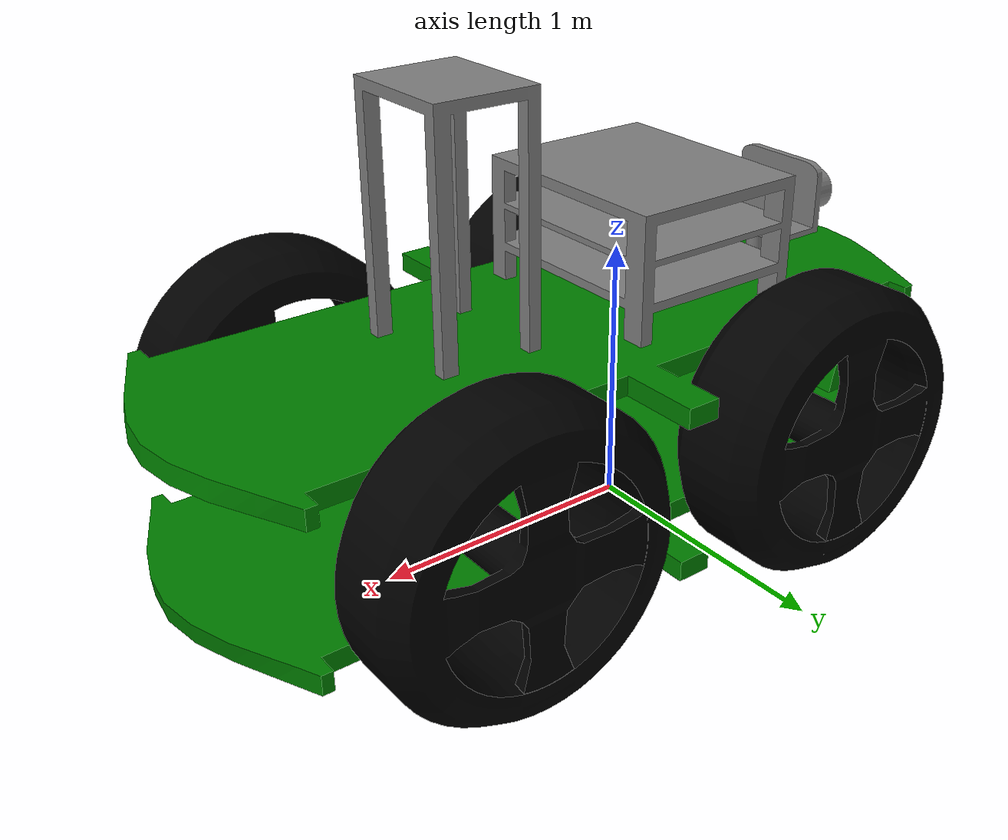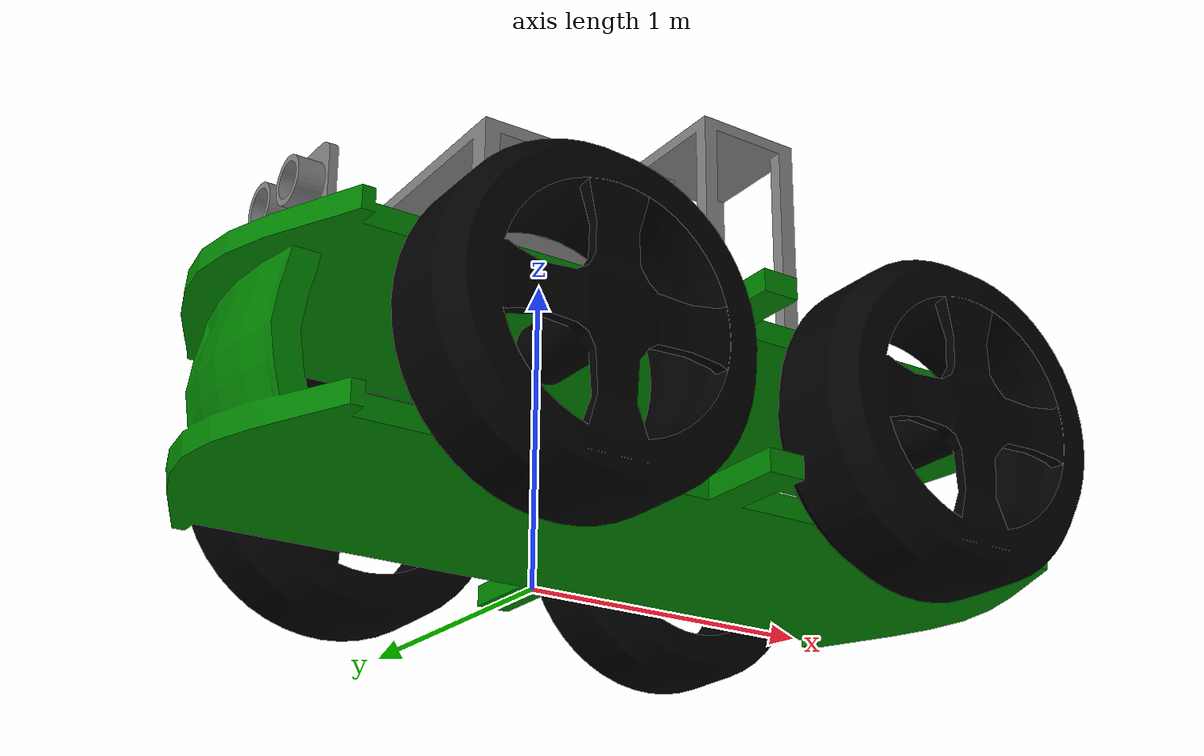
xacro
<?xml version="1.0"?>
<robot name="gojo_robot" xmlns:xacro="http://www.ros.org/wiki/xacro">

    <material name="green">
        <color rgba="0 0.5 0 1.0" />
    </material>
    <material name="grey">
        <color rgba="0.5 0.5 0.5 1" />
    </material>
    <material name="black">
        <color rgba="0 0 0 1" />
    </material>

    <link name="base_footprint">
    </link>
    <link name="base_link">
        <visual>
            <geometry>
                <mesh filename="package://gojo_description/meshes/chassis.stl" />
            </geometry>
            <origin xyz="0 0 0" rpy="0 0 0" />
            <material name="green" />
        </visual>
        <collision>
            <geometry>
                <box size="2.579053 1.183461 0.622474" />
            </geometry>
            <origin xyz="0 0 0" rpy="0 0 0" />
        </collision>
        <inertial>
            <mass value="1.0" />
            <origin xyz="0.246856 -0.000080 -0.000820" rpy="3.1416 -0.000377 3.1416" />
            <inertia ixx="0.251775" ixy="0.000000" ixz="0.0000000"
                     iyy="0.743608" iyz="0.000000"
                     izz="0.929233" />
        </inertial>
    </link>

    <joint name="base_joint" type="fixed">
        <parent link="base_footprint" />
        <child link="base_link" />
        <origin xyz="0 0 0.5" rpy="0 0 0" />
    </joint>

    <link name="left_front_wheel_link">
        <visual>
            <geometry>
                <mesh filename="package://gojo_description/meshes/tire.stl" />
            </geometry>
            <origin xyz="0 0 0" rpy="0 0 0" />
            <material name="black" />
        </visual>
        <collision>
            <geometry>
                <cylinder radius="0.5" length="0.371" />
            </geometry>
            <origin xyz="0 0 0" rpy="1.57 0 0" />
        </collision>
        <inertial>
            <mass value="1.0" />
            <origin xyz="-0.000272 0.027165 0.001936" rpy="3.1416 -0.001123 3.1416" />
            <inertia ixx="0.016741" ixy="0.000001" ixz="-0.000000"
                     iyy="0.029620" iyz="-0.000015"
                     izz="0.016693" />
        </inertial>
    </link>
    <joint name="base_left_front_wheel_joint" type="continuous">
        <parent link="base_link" />
        <child link="left_front_wheel_link" />
        <origin xyz="-0.3 -0.75 0" rpy="0 0 0" />
        <axis xyz="0 -1 0" />
    </joint>

    <link name="left_back_wheel_link">
        <visual>
            <geometry>
                <mesh filename="package://gojo_description/meshes/tire.stl" />
            </geometry>
            <origin xyz="0 0 0" rpy="0 0 0" />
            <material name="black" />
        </visual>
        <collision>
            <geometry>
                <cylinder radius="0.5" length="0.371" />
            </geometry>
            <origin xyz="0 0 0" rpy="1.57 0 0" />
        </collision>
        <inertial>
            <mass value="1.0" />
            <origin xyz="-0.000272 0.027165 0.001936" rpy="3.1416 -0.001123 3.1416" />
            <inertia ixx="0.016741" ixy="0.000001" ixz="-0.000000"
                     iyy="0.029620" iyz="-0.000015"
                     izz="0.016693" />
        </inertial>
    </link>
    <joint name="base_left_back_wheel_joint" type="continuous">
        <parent link="base_link" />
        <child link="left_back_wheel_link" />
        <origin xyz="1.0 -0.75 0" rpy="0 0 0" />
        <axis xyz="0 -1 0" />
    </joint>

    <link name="right_front_wheel_link">
        <visual>
            <geometry>
                <mesh filename="package://gojo_description/meshes/tire.stl" />
            </geometry>
            <origin xyz="0 0 0" rpy="0 0 3.14" />
            <material name="black" />
        </visual>
        <collision>
            <geometry>
                <cylinder radius="0.5" length="0.371" />
            </geometry>
            <origin xyz="0 0 0" rpy="1.57 0 0" />
        </collision>
        <inertial>
            <mass value="1.0" />
            <origin xyz="-0.000272 0.027165 0.001936" rpy="3.1416 -0.001123 3.1416" />
            <inertia ixx="0.016741" ixy="0.000001" ixz="-0.000000"
                     iyy="0.029620" iyz="-0.000015"
                     izz="0.016693" />
        </inertial>
    </link>
    <joint name="base_right_front_wheel_joint" type="continuous">
        <parent link="base_link" />
        <child link="right_front_wheel_link" />
        <origin xyz="-0.3 0.75 0" rpy="0 0 0" />
        <axis xyz="0 -1 0" />
    </joint>

    <link name="right_back_wheel_link">
        <visual>
            <geometry>
                <mesh filename="package://gojo_description/meshes/tire.stl" />
            </geometry>
            <origin xyz="0 0 0" rpy="0 0 3.14" />
            <material name="black" />
        </visual>
        <collision>
            <geometry>
                <cylinder radius="0.5" length="0.371" />
            </geometry>
            <origin xyz="0 0 0" rpy="1.57 0 0" />
        </collision>
        <inertial>
            <mass value="1.0" />
            <origin xyz="-0.000272 0.027165 0.001936" rpy="3.1416 -0.001123 3.1416" />
            <inertia ixx="0.016741" ixy="0.000001" ixz="-0.000000"
                     iyy="0.029620" iyz="-0.000015"
                     izz="0.016693" />
        </inertial>
    </link>
    <joint name="base_right_back_wheel_joint" type="continuous">
        <parent link="base_link" />
        <child link="right_back_wheel_link" />
        <origin xyz="1.0 0.75 0" rpy="0 0 0" />
        <axis xyz="0 -1 0" />
    </joint>

    <link name="ultrasonic_sensor_link">
        <visual>
            <geometry>
                <mesh filename="package://gojo_description/meshes/u_sensor.stl" />
            </geometry>
            <origin xyz="0 0 0" rpy="0 0 0" />
            <material name="grey" />
        </visual>
        <collision>
            <geometry>
                <box size="0.385456 0.186298 0.232044" />
            </geometry>
            <origin xyz="0 0 0" rpy="0 0 0" />
        </collision>
        <inertial>
            <mass value="0.25" />
            <origin xyz="-0.009628 -0.000085 0.021108" rpy="0.012 -0.591 1.569" />
            <inertia ixx="0.000139" ixy="-0.000000" ixz="0.000025"
                     iyy="0.000081" iyz="0.000000"
                     izz="0.000123" />
        </inertial>
    </link>
    <joint name="base_ultrasonic_sensor_joint" type="fixed">
        <parent link="base_link" />
        <child link="ultrasonic_sensor_link" />
        <origin xyz="-0.8 0 0.5" rpy="0 0 0" />
    </joint>

    <link name="raspberry_stand_link">
        <visual>
            <geometry>
                <mesh filename="package://gojo_description/meshes/pi_stand.stl" />
            </geometry>
            <origin xyz="0 0 0" rpy="0 0 1.57" />
            <material name="grey" />
        </visual>
        <collision>
            <geometry>
                <box size="0.819344 0.682982 0.44900" />
            </geometry>
            <origin xyz="0 0 0" rpy="0 0 1.57" />
        </collision>
        <inertial>
            <mass value="0.5" />
            <origin xyz="0.000000 0.000000 0.000000" rpy="0 0 1.57" />
            <inertia ixx="0.036371" ixy="0.000000" ixz="0.000000"
                     iyy="0.027836" iyz="0.000000"
                     izz="0.047407" />
        </inertial>
    </link>
    <joint name="base_raspberry_stand_joint" type="fixed">
        <parent link="base_link" />
        <child link="raspberry_stand_link" />
        <origin xyz="-0.1 0 0.6" rpy="0 0 0" />
    </joint>

    <link name="camera_stand_link">
        <visual>
            <geometry>
                <mesh filename="package://gojo_description/meshes/cam_stand.stl" />
            </geometry>
            <origin xyz="0 0 0" rpy="0 0 0" />
            <material name="grey" />
        </visual>
        <collision>
            <geometry>
                <box size="0.444509 0.378892 0.864679" />
            </geometry>
            <origin xyz="0 0 0" rpy="0 0 0" />
        </collision>
        <inertial>
            <mass value="0.25" />
            <origin xyz="0.002037 0.000000 0.034920" rpy="1.5708 0.012 0" />
            <inertia ixx="0.001652" ixy="0.000000" ixz="0.000011"
                     iyy="0.001518" iyz="0.000000"
                     izz="0.000759" />
        </inertial>
    </link>
    <joint name="base_camera_stand_joint" type="fixed">
        <parent link="base_link" />
        <child link="camera_stand_link" />
        <origin xyz="0.7 0 0.9" rpy="0 0 0" />
    </joint>

</robot>
